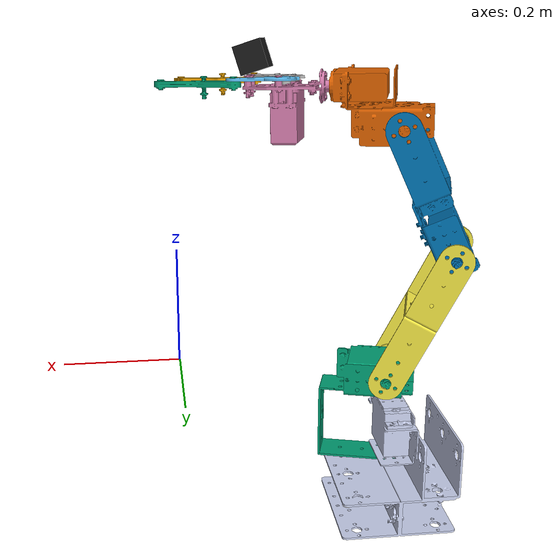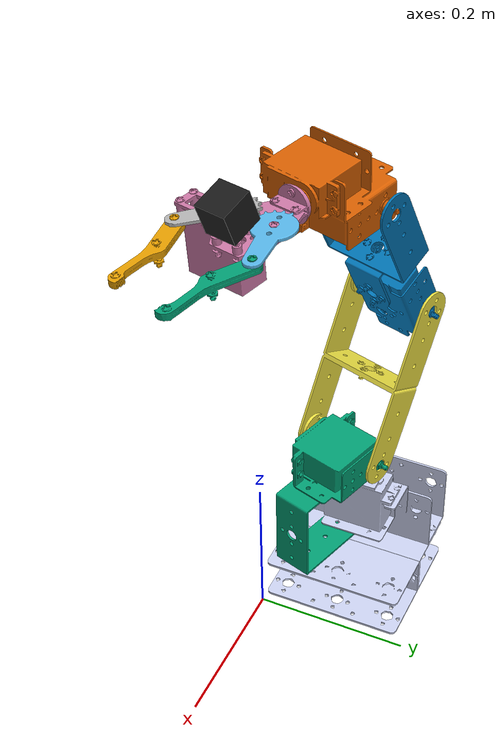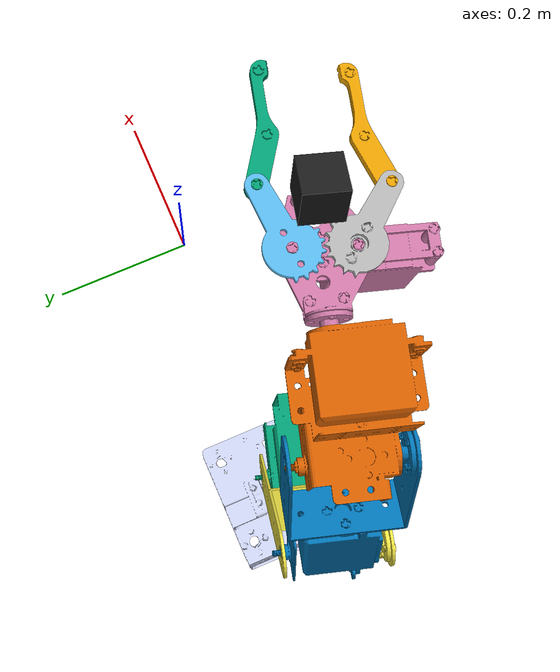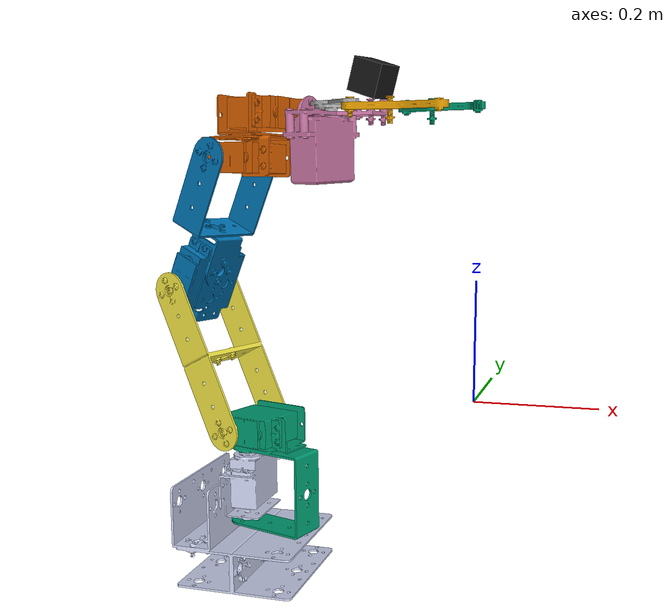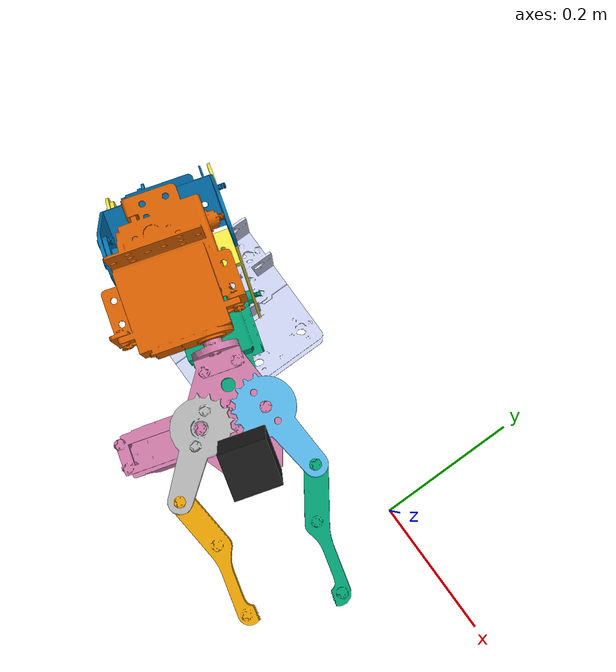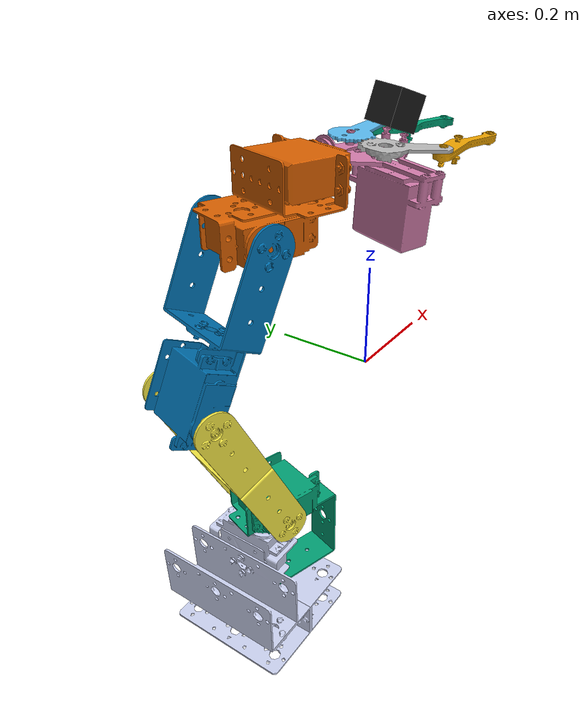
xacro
<?xml version="1.0"?>
<robot name="mini_arm_ros2" xmlns:xacro="http://www.ros.org/wiki/xacro">
  <xacro:arg name="scale" default="2.5" />
  <xacro:include filename="mini_arm.xacro" />

  <link name="world"/>
  <xacro:mini_arm parent="world" prefix="" scale="$(arg scale)">
    <origin xyz="0 0 0" rpy="0 0 0" />
  </xacro:mini_arm>

  <xacro:mini_arm_ros2_control name="mini_arm_control" prefix="" />
</robot>

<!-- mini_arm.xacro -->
<robot xmlns:xacro="http://www.ros.org/wiki/xacro">

  <xacro:macro name="mini_arm" params="parent prefix *origin scale:=1.0">

    <joint name="${prefix}base_joint" type="fixed">
      <xacro:insert_block name="origin" />
      <parent link="${parent}"/>
      <child link="${prefix}base_link"/>
    </joint>

    <link name="${prefix}base_link">
      <inertial>
        <origin xyz="${-0.1607 * scale} ${-0.0074 * scale} ${-0.0883 * scale}" rpy="0 0 0" />
        <mass value="${0.0763 * scale * scale * scale}" />
        <inertia
          ixx="${4.2395e-5 * scale**5}" ixy="${-9.8623e-12 * scale**5}" ixz="${6.6503e-8 * scale**5}"
          iyy="${1.8771e-5 * scale**5}" iyz="${7.1731e-8 * scale**5}" izz="${3.9904e-5 * scale**5}" />
      </inertial>
      <visual>
        <origin xyz="0 0 0" rpy="0 0 0" />
        <geometry>
          <mesh filename="package://mini_arm_ros2/meshes/decimated/base_link.STL" scale="${scale} ${scale} ${scale}" />
        </geometry>
        <material name="arm_light_blue">
          <color rgba="0.792 0.819 0.933 1" />
        </material>
      </visual>
      <collision>
        <origin xyz="${-0.16 * scale} ${-0.007 * scale} ${-0.088 * scale}" rpy="0 0 0" />
        <geometry>
          <box size="${0.16 * scale} ${0.08 * scale} ${0.09 * scale}" />
        </geometry>
      </collision>
    </link>

    <link name="${prefix}base_rotator">
      <inertial>
        <origin xyz="${0.0136 * scale} ${0.0002 * scale} ${0.0127 * scale}" rpy="0 0 0" />
        <mass value="${0.0393 * scale * scale * scale}" />
        <inertia
          ixx="${8.9429e-6 * scale**5}" ixy="${-7.1699e-8 * scale**5}" ixz="${6.7888e-12 * scale**5}"
          iyy="${1.1746e-5 * scale**5}" iyz="${-6.6502e-8 * scale**5}" izz="${1.1323e-5 * scale**5}" />
      </inertial>
      <visual>
        <origin xyz="0 0 0" rpy="0 0 0" />
        <geometry>
          <mesh filename="package://mini_arm_ros2/meshes/decimated/base_rotator.STL" scale="${scale} ${scale} ${scale}" />
        </geometry>
      </visual>
      <collision>
        <origin xyz="${0.014 * scale} 0 ${0.013 * scale}" rpy="0 0 0" />
        <geometry>
          <cylinder radius="${0.02 * scale}" length="${0.025 * scale}" />
        </geometry>
      </collision>
    </link>

    <joint name="${prefix}base_rotator_joint" type="revolute">
      <origin xyz="${-0.15562 * scale} ${-0.016822 * scale} ${-0.042262 * scale}" rpy="0 0 -0.28913" />
      <parent link="${prefix}base_link" />
      <child link="${prefix}base_rotator" />
      <axis xyz="0 0 -1" />
      <limit lower="-1.57" upper="1.57" effort="1.0" velocity="2.0" />
    </joint>

    <link name="${prefix}shoulder_link">
      <inertial>
        <origin xyz="${-0.0054 * scale} ${0.0207 * scale} ${0.0514 * scale}" rpy="0 0 0" />
        <mass value="${0.0144 * scale * scale * scale}" />
        <inertia
          ixx="${1.1733e-5 * scale**5}" ixy="${1.6179e-6 * scale**5}" ixz="${1.0441e-12 * scale**5}"
          iyy="${5.9684e-6 * scale**5}" iyz="${1.4746e-12 * scale**5}" izz="${7.9819e-6 * scale**5}" />
      </inertial>
      <visual>
        <origin xyz="0 0 0" rpy="0 0 0" />
        <geometry>
          <mesh filename="package://mini_arm_ros2/meshes/decimated/shoulder_link.STL" scale="${scale} ${scale} ${scale}" />
        </geometry>
      </visual>
      <collision>
        <origin xyz="${-0.005 * scale} ${0.021 * scale} ${0.051 * scale}" rpy="0 0 0" />
        <geometry>
          <box size="${0.02 * scale} ${0.02 * scale} ${0.10 * scale}" />
        </geometry>
      </collision>
    </link>

    <joint name="${prefix}shoulder_joint" type="revolute">
      <origin xyz="${0.001501 * scale} ${-0.0236 * scale} ${0.0201 * scale}" rpy="0.12148 -0.43402 -0.28254" />
      <parent link="${prefix}base_rotator" />
      <child link="${prefix}shoulder_link" />
      <axis xyz="-0.25294 0.96748 0" />
      <limit lower="-1.57" upper="1.57" effort="1.0" velocity="2.0" />
    </joint>

    <link name="${prefix}elbow_Link">
      <inertial>
        <origin xyz="${0.0179 * scale} ${0.0231 * scale} ${-0.0008 * scale}" rpy="0 0 0" />
        <mass value="${0.0420 * scale * scale * scale}" />
        <inertia
          ixx="${9.1905e-6 * scale**5}" ixy="${-2.0786e-8 * scale**5}" ixz="${-8.8621e-8 * scale**5}"
          iyy="${8.8031e-6 * scale**5}" iyz="${-7.9149e-8 * scale**5}" izz="${1.4976e-5 * scale**5}" />
      </inertial>
      <visual>
        <origin xyz="0 0 0" rpy="0 0 0" />
        <geometry>
          <mesh filename="package://mini_arm_ros2/meshes/decimated/elbow_Link.STL" scale="${scale} ${scale} ${scale}" />
        </geometry>
      </visual>
      <collision>
        <origin xyz="${0.018 * scale} ${0.023 * scale} ${-0.001 * scale}" rpy="0 0 0" />
        <geometry>
          <box size="${0.10 * scale} ${0.03 * scale} ${0.01 * scale}" />
        </geometry>
      </collision>
    </link>

    <joint name="${prefix}elbow_joint" type="revolute">
      <origin xyz="${-0.00072 * scale} ${0.00275 * scale} ${0.103 * scale}" rpy="0.10946 -0.67739 0.08213" />
      <parent link="${prefix}shoulder_link" />
      <child link="${prefix}elbow_Link" />
      <axis xyz="-0.13458 0.9909 0" />
      <limit lower="-1.57" upper="1.57" effort="1.0" velocity="2.0" />
    </joint>

    <link name="${prefix}wrist_Link">
      <inertial>
        <origin xyz="${0.0201 * scale} ${0.0185 * scale} ${0.0134 * scale}" rpy="0 0 0" />
        <mass value="${0.0644 * scale * scale * scale}" />
        <inertia
          ixx="${1.0619e-5 * scale**5}" ixy="${-1.4346e-7 * scale**5}" ixz="${6.6510e-8 * scale**5}"
          iyy="${1.0620e-5 * scale**5}" iyz="${6.6511e-8 * scale**5}" izz="${1.7101e-5 * scale**5}" />
      </inertial>
      <visual>
        <origin xyz="0 0 0" rpy="0 0 0" />
        <geometry>
          <mesh filename="package://mini_arm_ros2/meshes/decimated/wrist_Link.STL" scale="${scale} ${scale} ${scale}" />
        </geometry>
      </visual>
      <collision>
        <origin xyz="${0.020 * scale} ${0.019 * scale} ${0.013 * scale}" rpy="0 0 0" />
        <geometry>
          <box size="${0.055 * scale} ${0.04 * scale} ${0.03 * scale}" />
        </geometry>
      </collision>
    </link>

    <joint name="${prefix}wrist_joint" type="revolute">
      <origin xyz="${0.0957 * scale} ${0.0123 * scale} ${0.0015 * scale}" rpy="0 1.15689 0.13499" />
      <parent link="${prefix}elbow_Link" />
      <child link="${prefix}wrist_Link" />
      <axis xyz="0 1 0" />
      <limit lower="-1.57" upper="1.57" effort="1.0" velocity="2.0" />
    </joint>

    <link name="${prefix}end_base">
      <inertial>
        <origin xyz="${0.0291 * scale} ${-0.0219 * scale} ${-0.0182 * scale}" rpy="0 0 0" />
        <mass value="${0.0345 * scale * scale * scale}" />
        <inertia
          ixx="${8.0002e-6 * scale**5}" ixy="${4.6325e-9 * scale**5}" ixz="${4.0054e-13 * scale**5}"
          iyy="${4.7842e-6 * scale**5}" iyz="${-7.1715e-8 * scale**5}" izz="${5.9165e-6 * scale**5}" />
      </inertial>
      <visual>
        <origin xyz="0 0 0" rpy="0 0 0" />
        <geometry>
          <mesh filename="package://mini_arm_ros2/meshes/decimated/end_base.STL" scale="${scale} ${scale} ${scale}" />
        </geometry>
      </visual>
      <collision>
        <origin xyz="${0.029 * scale} ${-0.022 * scale} ${-0.018 * scale}" rpy="0 0 0" />
        <geometry>
          <box size="${0.055 * scale} ${0.04 * scale} ${0.02 * scale}" />
        </geometry>
      </collision>
    </link>

    <joint name="${prefix}end_joint" type="revolute">
      <origin xyz="${0.054599 * scale} ${0.025999 * scale} ${0.026999 * scale}" rpy="0.05292 0 0" />
      <parent link="${prefix}wrist_Link" />
      <child link="${prefix}end_base" />
      <axis xyz="-1 0 0" />
      <limit lower="-1.57" upper="1.57" effort="1.0" velocity="2.0" />
    </joint>

    <!-- Simplified Gripper -->
    <link name="${prefix}gear_right">
      <inertial>
        <origin xyz="${0.0052 * scale} ${0.0001 * scale} ${0.0006 * scale}" rpy="0 0 0" />
        <mass value="${0.002 * scale * scale * scale}" />
        <inertia ixx="${6.18e-8 * scale**5}" ixy="0" ixz="0" iyy="${2.47e-7 * scale**5}" iyz="0" izz="${3.06e-7 * scale**5}" />
      </inertial>
      <visual>
        <origin xyz="0 0 0" rpy="0 0 0" />
        <geometry>
          <mesh filename="package://mini_arm_ros2/meshes/decimated/gear_right.STL" scale="${scale} ${scale} ${scale}" />
        </geometry>
      </visual>
      <collision>
        <origin xyz="${0.005 * scale} 0 ${0.001 * scale}" rpy="0 0 0" />
        <geometry>
          <box size="${0.03 * scale} ${0.01 * scale} ${0.005 * scale}" />
        </geometry>
      </collision>
    </link>

    <joint name="${prefix}gear_right_joint" type="revolute">
      <origin xyz="${0.03 * scale} ${-0.0157 * scale} ${0.0043 * scale}" rpy="0 0 -0.60373" />
      <parent link="${prefix}end_base" />
      <child link="${prefix}gear_right" />
      <axis xyz="0 0 -1" />
      <limit lower="-1.57" upper="1.57" effort="1.0" velocity="2.0" />
    </joint>

    <link name="${prefix}finger_right">
      <inertial>
        <origin xyz="${0.0222 * scale} ${-0.0022 * scale} ${-0.0044 * scale}" rpy="0 0 0" />
        <mass value="${0.0022 * scale * scale * scale}" />
        <inertia ixx="${3.8e-8 * scale**5}" ixy="0" ixz="0" iyy="${5.21e-7 * scale**5}" iyz="0" izz="${5.52e-7 * scale**5}" />
      </inertial>
      <visual>
        <origin xyz="0 0 0" rpy="0 0 0" />
        <geometry>
          <mesh filename="package://mini_arm_ros2/meshes/decimated/finger_right.STL" scale="${scale} ${scale} ${scale}" />
        </geometry>
      </visual>
      <collision>
        <origin xyz="${0.022 * scale} ${-0.002 * scale} ${-0.004 * scale}" rpy="0 0 0" />
        <geometry>
          <box size="${0.04 * scale} ${0.01 * scale} ${0.005 * scale}" />
        </geometry>
      </collision>
    </link>

    <joint name="${prefix}finger_right_joint" type="revolute">
      <origin xyz="${0.030762 * scale} 0 ${0.0025 * scale}" rpy="0 0 0.98133" />
      <parent link="${prefix}gear_right" />
      <child link="${prefix}finger_right" />
      <axis xyz="0 0 1" />
      <limit lower="-1.57" upper="1.57" effort="1.0" velocity="2.0" />
      <mimic joint="${prefix}gear_right_joint" multiplier="1" offset="0" />
    </joint>

    <link name="${prefix}gear_left">
      <inertial>
        <origin xyz="${0.0074 * scale} ${-0.0001 * scale} ${-0.0011 * scale}" rpy="0 0 0" />
        <mass value="${0.0014 * scale * scale * scale}" />
        <inertia ixx="${4.6e-8 * scale**5}" ixy="0" ixz="0" iyy="${2.37e-7 * scale**5}" iyz="0" izz="${2.82e-7 * scale**5}" />
      </inertial>
      <visual>
        <origin xyz="0 0 0" rpy="0 0 0" />
        <geometry>
          <mesh filename="package://mini_arm_ros2/meshes/decimated/gear_left.STL" scale="${scale} ${scale} ${scale}" />
        </geometry>
      </visual>
      <collision>
        <origin xyz="${0.007 * scale} 0 ${-0.001 * scale}" rpy="0 0 0" />
        <geometry>
          <box size="${0.03 * scale} ${0.01 * scale} ${0.005 * scale}" />
        </geometry>
      </collision>
    </link>

    <joint name="${prefix}gear_left_joint" type="revolute">
      <origin xyz="${0.0305 * scale} ${0.01226 * scale} ${0.0068 * scale}" rpy="0 0 0.3732" />
      <parent link="${prefix}end_base" />
      <child link="${prefix}gear_left" />
      <axis xyz="0 0 -1" />
      <limit lower="-1.57" upper="1.57" effort="1.0" velocity="2.0" />
      <mimic joint="${prefix}gear_right_joint" multiplier="-1" offset="0" />
    </joint>

    <link name="${prefix}finger_left">
      <inertial>
        <origin xyz="${0.0224 * scale} ${0.0023 * scale} ${-0.0044 * scale}" rpy="0 0 0" />
        <mass value="${0.0022 * scale * scale * scale}" />
        <inertia ixx="${3.77e-8 * scale**5}" ixy="0" ixz="0" iyy="${5.21e-7 * scale**5}" iyz="0" izz="${5.52e-7 * scale**5}" />
      </inertial>
      <visual>
        <origin xyz="0 0 0" rpy="0 0 0" />
        <geometry>
          <mesh filename="package://mini_arm_ros2/meshes/decimated/finger_left.STL" scale="${scale} ${scale} ${scale}" />
        </geometry>
      </visual>
      <collision>
        <origin xyz="${0.022 * scale} ${0.002 * scale} ${-0.004 * scale}" rpy="0 0 0" />
        <geometry>
          <box size="${0.04 * scale} ${0.01 * scale} ${0.005 * scale}" />
        </geometry>
      </collision>
    </link>

    <joint name="${prefix}finger_left_joint" type="revolute">
      <origin xyz="${0.030762 * scale} 0 0" rpy="0 0 -0.68869" />
      <parent link="${prefix}gear_left" />
      <child link="${prefix}finger_left" />
      <axis xyz="0 0 1" />
      <limit lower="-1.57" upper="1.57" effort="1.0" velocity="2.0" />
      <mimic joint="${prefix}gear_right_joint" multiplier="-1" offset="0" />
    </joint>

    <link name="${prefix}tool0"/>
    <joint name="${prefix}tool0_fixed" type="fixed">
      <parent link="${prefix}end_base"/>
      <child link="${prefix}tool0"/>
      <origin xyz="${0.10 * scale} 0 0" rpy="0 0 0"/>
    </joint>

    <!-- Camera -->
    <link name="${prefix}camera_link">
      <inertial>
        <mass value="${0.01 * scale * scale * scale}"/>
        <inertia ixx="${1e-6 * scale**5}" ixy="0" ixz="0" iyy="${1e-6 * scale**5}" iyz="0" izz="${1e-6 * scale**5}"/>
      </inertial>
      <visual>
        <geometry>
          <box size="${0.02 * scale} ${0.02 * scale} ${0.02 * scale}"/>
        </geometry>
        <material name="camera_black">
          <color rgba="0.1 0.1 0.1 1"/>
        </material>
      </visual>
      <collision>
        <geometry>
          <box size="${0.02 * scale} ${0.02 * scale} ${0.02 * scale}"/>
        </geometry>
      </collision>
    </link>
    <joint name="${prefix}camera_joint" type="fixed">
      <parent link="${prefix}end_base"/>
      <child link="${prefix}camera_link"/>
      <origin xyz="${0.05 * scale} 0 ${0.02 * scale}" rpy="0 0.3 0"/>
    </joint>

  </xacro:macro>

  <xacro:macro name="mini_arm_ros2_control" params="name prefix">
    <ros2_control name="${name}" type="system">
      <hardware>
        <plugin>mock_components/GenericSystem</plugin>
      </hardware>
      <joint name="${prefix}base_rotator_joint">
        <command_interface name="position"/>
        <state_interface name="position"/>
      </joint>
      <joint name="${prefix}shoulder_joint">
        <command_interface name="position"/>
        <state_interface name="position"/>
      </joint>
      <joint name="${prefix}elbow_joint">
        <command_interface name="position"/>
        <state_interface name="position"/>
      </joint>
      <joint name="${prefix}wrist_joint">
        <command_interface name="position"/>
        <state_interface name="position"/>
      </joint>
      <joint name="${prefix}end_joint">
        <command_interface name="position"/>
        <state_interface name="position"/>
      </joint>
      <joint name="${prefix}gear_right_joint">
        <command_interface name="position"/>
        <state_interface name="position"/>
      </joint>
      <joint name="${prefix}gear_left_joint">
        <param name="mimic">${prefix}gear_right_joint</param>
        <param name="multiplier">-1</param>
        <command_interface name="position"/>
      </joint>
      <joint name="${prefix}finger_right_joint">
        <param name="mimic">${prefix}gear_right_joint</param>
        <param name="multiplier">1</param>
        <command_interface name="position"/>
      </joint>
      <joint name="${prefix}finger_left_joint">
        <param name="mimic">${prefix}gear_right_joint</param>
        <param name="multiplier">-1</param>
        <command_interface name="position"/>
      </joint>
    </ros2_control>
  </xacro:macro>

</robot>
